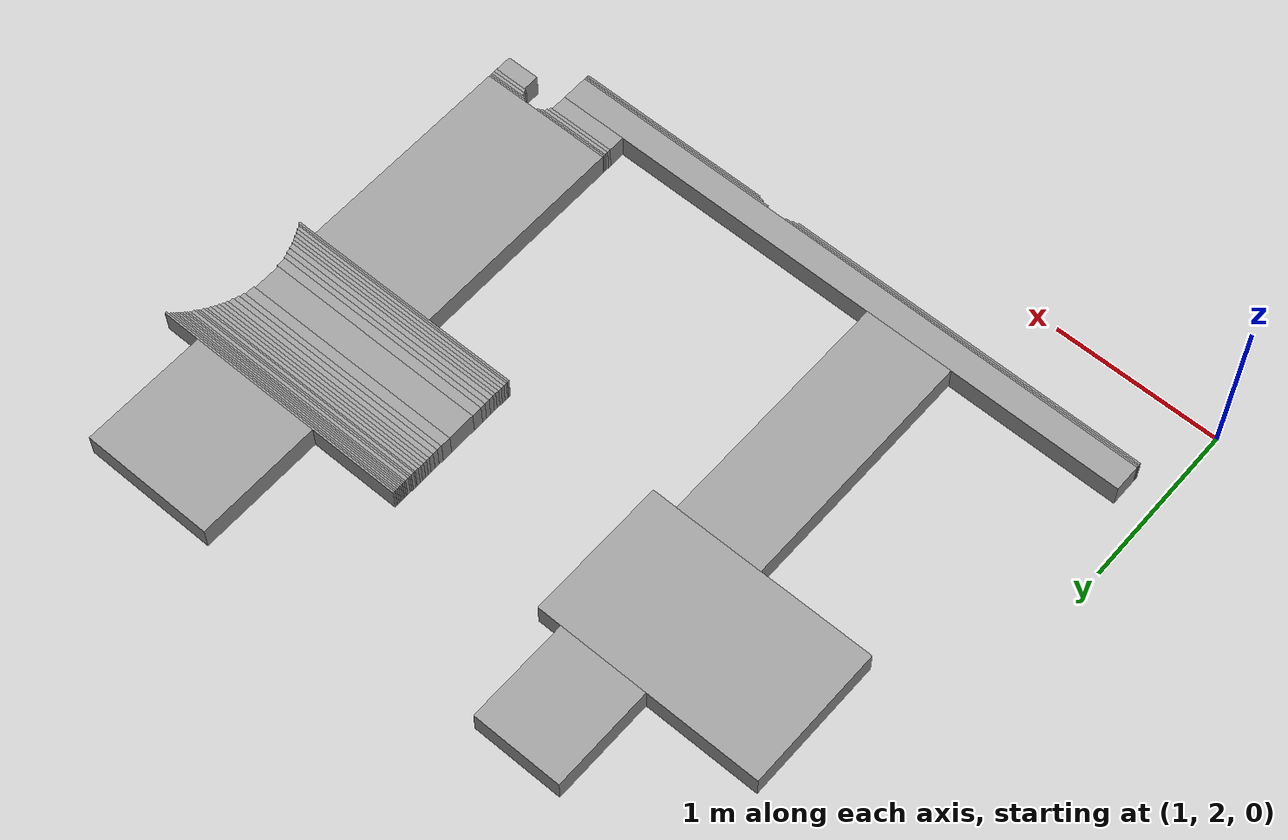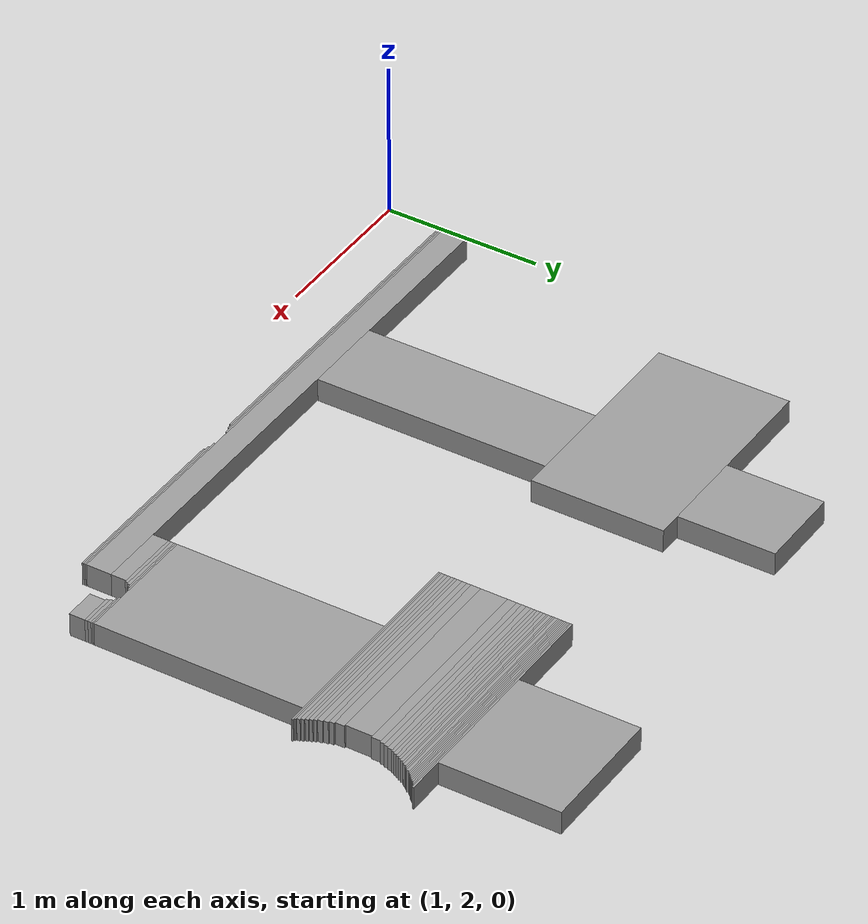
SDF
<sdf version="1.6">
 <model name="new_model">
  <static>1</static>
  <static>1</static>
  <static>1</static>
  <static>1</static>
  <static>1</static>
  <static>1</static>
  <static>1</static>
  <static>1</static>
  <static>1</static>
  <static>1</static>
  <static>1</static>
  <static>1</static>
  <static>1</static>
  <static>1</static>
  <static>1</static>
  <static>1</static>
  <static>1</static>
  <static>1</static>
  <static>1</static>
  <static>1</static>
  <static>1</static>
  <static>1</static>
  <static>1</static>
  <static>1</static>
  <static>1</static>
  <static>1</static>
  <static>1</static>
  <static>1</static>
  <static>1</static>
  <static>1</static>
  <static>1</static>
  <static>1</static>
  <static>1</static>
  <static>1</static>
  <static>1</static>
  <static>1</static>
  <static>1</static>
  <static>1</static>
  <static>1</static>
  <static>1</static>
  <static>1</static>
  <static>1</static>
  <static>1</static>
  <static>1</static>
  <static>1</static>
  <static>1</static>
  <static>1</static>
  <static>1</static>
  <static>1</static>
  <static>1</static>
  <static>1</static>
  <static>1</static>
  <static>1</static>
  <static>1</static>
  <static>1</static>
  <static>1</static>
  <static>1</static>
  <static>1</static>
  <static>1</static>
  <static>1</static>
  <static>1</static>
  <static>1</static>
  <static>1</static>
  <static>1</static>
  <static>1</static>
  <static>1</static>
  <static>1</static>
  <static>1</static>
  <static>1</static>
  <static>1</static>
  <static>1</static>
  <static>1</static>
  <static>1</static>
  <static>1</static>
  <static>1</static>
  <static>1</static>
  <static>1</static>
  <static>1</static>
  <static>1</static>
  <static>1</static>
  <static>1</static>
  <static>1</static>
  <static>1</static>
  <static>1</static>
  <static>1</static>
  <static>1</static>
  <static>1</static>
  <static>1</static>
  <static>1</static>
  <static>1</static>
  <static>1</static>
  <static>1</static>
  <static>1</static>
  <static>1</static>
  <static>1</static>
  <static>1</static>
  <static>1</static>
  <static>1</static>
  <static>1</static>
  <static>1</static>
  <static>1</static>
  <static>1</static>
  <static>1</static>
  <static>1</static>
  <static>1</static>
  <static>1</static>
  <static>1</static>
  <static>1</static>
  <static>1</static>
  <static>1</static>
  <static>1</static>
  <static>1</static>
  <static>1</static>
  <static>1</static>
  <link name="wall115">
   <collision name="wall115_collision">
    <geometry><box><size>2.191250 0.011250 0.150000</size></box></geometry>
    <pose>2.270000 2.450000 0.075000 0 0 0</pose>
   </collision>
   <visual name="Wall_115_Visual">
    <pose>2.270000 2.450000 0.075000 0 0 0</pose>
    <geometry><box><size>2.191250 0.011250 0.150000</size></box></geometry>
    <material>
     <script><uri>file://media/materials/scripts/gazebo.material</uri><name>Gazebo/Grey</name></script>
     <ambient>1 1 1 1</ambient>
    </material>
    <meta><layer>0</layer></meta>
   </visual>
  </link>
  <static>1</static>
  <link name="wall116">
   <collision name="wall116_collision">
    <geometry><box><size>1.201250 0.011250 0.150000</size></box></geometry>
    <pose>4.225000 2.450000 0.075000 0 0 0</pose>
   </collision>
   <visual name="Wall_116_Visual">
    <pose>4.225000 2.450000 0.075000 0 0 0</pose>
    <geometry><box><size>1.201250 0.011250 0.150000</size></box></geometry>
    <material>
     <script><uri>file://media/materials/scripts/gazebo.material</uri><name>Gazebo/Grey</name></script>
     <ambient>1 1 1 1</ambient>
    </material>
    <meta><layer>0</layer></meta>
   </visual>
  </link>
  <static>1</static>
  <link name="wall117">
   <collision name="wall117_collision">
    <geometry><box><size>2.221250 0.011250 0.150000</size></box></geometry>
    <pose>2.285000 2.460000 0.075000 0 0 0</pose>
   </collision>
   <visual name="Wall_117_Visual">
    <pose>2.285000 2.460000 0.075000 0 0 0</pose>
    <geometry><box><size>2.221250 0.011250 0.150000</size></box></geometry>
    <material>
     <script><uri>file://media/materials/scripts/gazebo.material</uri><name>Gazebo/Grey</name></script>
     <ambient>1 1 1 1</ambient>
    </material>
    <meta><layer>0</layer></meta>
   </visual>
  </link>
  <static>1</static>
  <link name="wall118">
   <collision name="wall118_collision">
    <geometry><box><size>1.231250 0.011250 0.150000</size></box></geometry>
    <pose>4.210000 2.460000 0.075000 0 0 0</pose>
   </collision>
   <visual name="Wall_118_Visual">
    <pose>4.210000 2.460000 0.075000 0 0 0</pose>
    <geometry><box><size>1.231250 0.011250 0.150000</size></box></geometry>
    <material>
     <script><uri>file://media/materials/scripts/gazebo.material</uri><name>Gazebo/Grey</name></script>
     <ambient>1 1 1 1</ambient>
    </material>
    <meta><layer>0</layer></meta>
   </visual>
  </link>
  <static>1</static>
  <link name="wall119">
   <collision name="wall119_collision">
    <geometry><box><size>2.261250 0.011250 0.150000</size></box></geometry>
    <pose>2.305000 2.470000 0.075000 0 0 0</pose>
   </collision>
   <visual name="Wall_119_Visual">
    <pose>2.305000 2.470000 0.075000 0 0 0</pose>
    <geometry><box><size>2.261250 0.011250 0.150000</size></box></geometry>
    <material>
     <script><uri>file://media/materials/scripts/gazebo.material</uri><name>Gazebo/Grey</name></script>
     <ambient>1 1 1 1</ambient>
    </material>
    <meta><layer>0</layer></meta>
   </visual>
  </link>
  <static>1</static>
  <link name="wall120">
   <collision name="wall120_collision">
    <geometry><box><size>1.271250 0.011250 0.150000</size></box></geometry>
    <pose>4.190000 2.470000 0.075000 0 0 0</pose>
   </collision>
   <visual name="Wall_120_Visual">
    <pose>4.190000 2.470000 0.075000 0 0 0</pose>
    <geometry><box><size>1.271250 0.011250 0.150000</size></box></geometry>
    <material>
     <script><uri>file://media/materials/scripts/gazebo.material</uri><name>Gazebo/Grey</name></script>
     <ambient>1 1 1 1</ambient>
    </material>
    <meta><layer>0</layer></meta>
   </visual>
  </link>
  <static>1</static>
  <link name="wall121">
   <collision name="wall121_collision">
    <geometry><box><size>3.651250 0.161250 0.150000</size></box></geometry>
    <pose>3.000000 2.555000 0.075000 0 0 0</pose>
   </collision>
   <visual name="Wall_121_Visual">
    <pose>3.000000 2.555000 0.075000 0 0 0</pose>
    <geometry><box><size>3.651250 0.161250 0.150000</size></box></geometry>
    <material>
     <script><uri>file://media/materials/scripts/gazebo.material</uri><name>Gazebo/Grey</name></script>
     <ambient>1 1 1 1</ambient>
    </material>
    <meta><layer>0</layer></meta>
   </visual>
  </link>
  <static>1</static>
  <link name="wall122">
   <collision name="wall122_collision">
    <geometry><box><size>0.541250 1.501250 0.150000</size></box></geometry>
    <pose>2.485000 3.385000 0.075000 0 0 0</pose>
   </collision>
   <visual name="Wall_122_Visual">
    <pose>2.485000 3.385000 0.075000 0 0 0</pose>
    <geometry><box><size>0.541250 1.501250 0.150000</size></box></geometry>
    <material>
     <script><uri>file://media/materials/scripts/gazebo.material</uri><name>Gazebo/Grey</name></script>
     <ambient>1 1 1 1</ambient>
    </material>
    <meta><layer>0</layer></meta>
   </visual>
  </link>
  <static>1</static>
  <link name="wall123">
   <collision name="wall123_collision">
    <geometry><box><size>0.411250 0.101250 0.150000</size></box></geometry>
    <pose>4.620000 2.685000 0.075000 0 0 0</pose>
   </collision>
   <visual name="Wall_123_Visual">
    <pose>4.620000 2.685000 0.075000 0 0 0</pose>
    <geometry><box><size>0.411250 0.101250 0.150000</size></box></geometry>
    <material>
     <script><uri>file://media/materials/scripts/gazebo.material</uri><name>Gazebo/Grey</name></script>
     <ambient>1 1 1 1</ambient>
    </material>
    <meta><layer>0</layer></meta>
   </visual>
  </link>
  <static>1</static>
  <link name="wall124">
   <collision name="wall124_collision">
    <geometry><box><size>0.201250 0.101250 0.150000</size></box></geometry>
    <pose>5.125000 2.685000 0.075000 0 0 0</pose>
   </collision>
   <visual name="Wall_124_Visual">
    <pose>5.125000 2.685000 0.075000 0 0 0</pose>
    <geometry><box><size>0.201250 0.101250 0.150000</size></box></geometry>
    <material>
     <script><uri>file://media/materials/scripts/gazebo.material</uri><name>Gazebo/Grey</name></script>
     <ambient>1 1 1 1</ambient>
    </material>
    <meta><layer>0</layer></meta>
   </visual>
  </link>
  <static>1</static>
  <link name="wall125">
   <collision name="wall125_collision">
    <geometry><box><size>0.421250 0.021250 0.150000</size></box></geometry>
    <pose>4.625000 2.745000 0.075000 0 0 0</pose>
   </collision>
   <visual name="Wall_125_Visual">
    <pose>4.625000 2.745000 0.075000 0 0 0</pose>
    <geometry><box><size>0.421250 0.021250 0.150000</size></box></geometry>
    <material>
     <script><uri>file://media/materials/scripts/gazebo.material</uri><name>Gazebo/Grey</name></script>
     <ambient>1 1 1 1</ambient>
    </material>
    <meta><layer>0</layer></meta>
   </visual>
  </link>
  <static>1</static>
  <link name="wall126">
   <collision name="wall126_collision">
    <geometry><box><size>0.211250 0.021250 0.150000</size></box></geometry>
    <pose>5.120000 2.745000 0.075000 0 0 0</pose>
   </collision>
   <visual name="Wall_126_Visual">
    <pose>5.120000 2.745000 0.075000 0 0 0</pose>
    <geometry><box><size>0.211250 0.021250 0.150000</size></box></geometry>
    <material>
     <script><uri>file://media/materials/scripts/gazebo.material</uri><name>Gazebo/Grey</name></script>
     <ambient>1 1 1 1</ambient>
    </material>
    <meta><layer>0</layer></meta>
   </visual>
  </link>
  <static>1</static>
  <link name="wall127">
   <collision name="wall127_collision">
    <geometry><box><size>0.431250 0.021250 0.150000</size></box></geometry>
    <pose>4.630000 2.765000 0.075000 0 0 0</pose>
   </collision>
   <visual name="Wall_127_Visual">
    <pose>4.630000 2.765000 0.075000 0 0 0</pose>
    <geometry><box><size>0.431250 0.021250 0.150000</size></box></geometry>
    <material>
     <script><uri>file://media/materials/scripts/gazebo.material</uri><name>Gazebo/Grey</name></script>
     <ambient>1 1 1 1</ambient>
    </material>
    <meta><layer>0</layer></meta>
   </visual>
  </link>
  <static>1</static>
  <link name="wall128">
   <collision name="wall128_collision">
    <geometry><box><size>0.221250 0.021250 0.150000</size></box></geometry>
    <pose>5.115000 2.765000 0.075000 0 0 0</pose>
   </collision>
   <visual name="Wall_128_Visual">
    <pose>5.115000 2.765000 0.075000 0 0 0</pose>
    <geometry><box><size>0.221250 0.021250 0.150000</size></box></geometry>
    <material>
     <script><uri>file://media/materials/scripts/gazebo.material</uri><name>Gazebo/Grey</name></script>
     <ambient>1 1 1 1</ambient>
    </material>
    <meta><layer>0</layer></meta>
   </visual>
  </link>
  <static>1</static>
  <link name="wall129">
   <collision name="wall129_collision">
    <geometry><box><size>0.451250 0.011250 0.150000</size></box></geometry>
    <pose>4.640000 2.780000 0.075000 0 0 0</pose>
   </collision>
   <visual name="Wall_129_Visual">
    <pose>4.640000 2.780000 0.075000 0 0 0</pose>
    <geometry><box><size>0.451250 0.011250 0.150000</size></box></geometry>
    <material>
     <script><uri>file://media/materials/scripts/gazebo.material</uri><name>Gazebo/Grey</name></script>
     <ambient>1 1 1 1</ambient>
    </material>
    <meta><layer>0</layer></meta>
   </visual>
  </link>
  <static>1</static>
  <link name="wall130">
   <collision name="wall130_collision">
    <geometry><box><size>0.241250 0.011250 0.150000</size></box></geometry>
    <pose>5.105000 2.780000 0.075000 0 0 0</pose>
   </collision>
   <visual name="Wall_130_Visual">
    <pose>5.105000 2.780000 0.075000 0 0 0</pose>
    <geometry><box><size>0.241250 0.011250 0.150000</size></box></geometry>
    <material>
     <script><uri>file://media/materials/scripts/gazebo.material</uri><name>Gazebo/Grey</name></script>
     <ambient>1 1 1 1</ambient>
    </material>
    <meta><layer>0</layer></meta>
   </visual>
  </link>
  <static>1</static>
  <link name="wall131">
   <collision name="wall131_collision">
    <geometry><box><size>0.471250 0.011250 0.150000</size></box></geometry>
    <pose>4.650000 2.790000 0.075000 0 0 0</pose>
   </collision>
   <visual name="Wall_131_Visual">
    <pose>4.650000 2.790000 0.075000 0 0 0</pose>
    <geometry><box><size>0.471250 0.011250 0.150000</size></box></geometry>
    <material>
     <script><uri>file://media/materials/scripts/gazebo.material</uri><name>Gazebo/Grey</name></script>
     <ambient>1 1 1 1</ambient>
    </material>
    <meta><layer>0</layer></meta>
   </visual>
  </link>
  <static>1</static>
  <link name="wall132">
   <collision name="wall132_collision">
    <geometry><box><size>0.261250 0.011250 0.150000</size></box></geometry>
    <pose>5.095000 2.790000 0.075000 0 0 0</pose>
   </collision>
   <visual name="Wall_132_Visual">
    <pose>5.095000 2.790000 0.075000 0 0 0</pose>
    <geometry><box><size>0.261250 0.011250 0.150000</size></box></geometry>
    <material>
     <script><uri>file://media/materials/scripts/gazebo.material</uri><name>Gazebo/Grey</name></script>
     <ambient>1 1 1 1</ambient>
    </material>
    <meta><layer>0</layer></meta>
   </visual>
  </link>
  <static>1</static>
  <link name="wall133">
   <collision name="wall133_collision">
    <geometry><box><size>0.811250 1.341250 0.150000</size></box></geometry>
    <pose>4.820000 3.465000 0.075000 0 0 0</pose>
   </collision>
   <visual name="Wall_133_Visual">
    <pose>4.820000 3.465000 0.075000 0 0 0</pose>
    <geometry><box><size>0.811250 1.341250 0.150000</size></box></geometry>
    <material>
     <script><uri>file://media/materials/scripts/gazebo.material</uri><name>Gazebo/Grey</name></script>
     <ambient>1 1 1 1</ambient>
    </material>
    <meta><layer>0</layer></meta>
   </visual>
  </link>
  <static>1</static>
  <link name="wall134">
   <collision name="wall134_collision">
    <geometry><box><size>1.381250 0.851250 0.150000</size></box></geometry>
    <pose>2.215000 4.560000 0.075000 0 0 0</pose>
   </collision>
   <visual name="Wall_134_Visual">
    <pose>2.215000 4.560000 0.075000 0 0 0</pose>
    <geometry><box><size>1.381250 0.851250 0.150000</size></box></geometry>
    <material>
     <script><uri>file://media/materials/scripts/gazebo.material</uri><name>Gazebo/Grey</name></script>
     <ambient>1 1 1 1</ambient>
    </material>
    <meta><layer>0</layer></meta>
   </visual>
  </link>
  <static>1</static>
  <link name="wall135">
   <collision name="wall135_collision">
    <geometry><box><size>1.471250 0.011250 0.150000</size></box></geometry>
    <pose>4.600000 4.140000 0.075000 0 0 0</pose>
   </collision>
   <visual name="Wall_135_Visual">
    <pose>4.600000 4.140000 0.075000 0 0 0</pose>
    <geometry><box><size>1.471250 0.011250 0.150000</size></box></geometry>
    <material>
     <script><uri>file://media/materials/scripts/gazebo.material</uri><name>Gazebo/Grey</name></script>
     <ambient>1 1 1 1</ambient>
    </material>
    <meta><layer>0</layer></meta>
   </visual>
  </link>
  <static>1</static>
  <link name="wall136">
   <collision name="wall136_collision">
    <geometry><box><size>1.461250 0.011250 0.150000</size></box></geometry>
    <pose>4.595000 4.150000 0.075000 0 0 0</pose>
   </collision>
   <visual name="Wall_136_Visual">
    <pose>4.595000 4.150000 0.075000 0 0 0</pose>
    <geometry><box><size>1.461250 0.011250 0.150000</size></box></geometry>
    <material>
     <script><uri>file://media/materials/scripts/gazebo.material</uri><name>Gazebo/Grey</name></script>
     <ambient>1 1 1 1</ambient>
    </material>
    <meta><layer>0</layer></meta>
   </visual>
  </link>
  <static>1</static>
  <link name="wall137">
   <collision name="wall137_collision">
    <geometry><box><size>1.451250 0.021250 0.150000</size></box></geometry>
    <pose>4.590000 4.165000 0.075000 0 0 0</pose>
   </collision>
   <visual name="Wall_137_Visual">
    <pose>4.590000 4.165000 0.075000 0 0 0</pose>
    <geometry><box><size>1.451250 0.021250 0.150000</size></box></geometry>
    <material>
     <script><uri>file://media/materials/scripts/gazebo.material</uri><name>Gazebo/Grey</name></script>
     <ambient>1 1 1 1</ambient>
    </material>
    <meta><layer>0</layer></meta>
   </visual>
  </link>
  <static>1</static>
  <link name="wall138">
   <collision name="wall138_collision">
    <geometry><box><size>1.441250 0.021250 0.150000</size></box></geometry>
    <pose>4.585000 4.185000 0.075000 0 0 0</pose>
   </collision>
   <visual name="Wall_138_Visual">
    <pose>4.585000 4.185000 0.075000 0 0 0</pose>
    <geometry><box><size>1.441250 0.021250 0.150000</size></box></geometry>
    <material>
     <script><uri>file://media/materials/scripts/gazebo.material</uri><name>Gazebo/Grey</name></script>
     <ambient>1 1 1 1</ambient>
    </material>
    <meta><layer>0</layer></meta>
   </visual>
  </link>
  <static>1</static>
  <link name="wall139">
   <collision name="wall139_collision">
    <geometry><box><size>1.431250 0.021250 0.150000</size></box></geometry>
    <pose>4.580000 4.205000 0.075000 0 0 0</pose>
   </collision>
   <visual name="Wall_139_Visual">
    <pose>4.580000 4.205000 0.075000 0 0 0</pose>
    <geometry><box><size>1.431250 0.021250 0.150000</size></box></geometry>
    <material>
     <script><uri>file://media/materials/scripts/gazebo.material</uri><name>Gazebo/Grey</name></script>
     <ambient>1 1 1 1</ambient>
    </material>
    <meta><layer>0</layer></meta>
   </visual>
  </link>
  <static>1</static>
  <link name="wall140">
   <collision name="wall140_collision">
    <geometry><box><size>1.421250 0.021250 0.150000</size></box></geometry>
    <pose>4.575000 4.225000 0.075000 0 0 0</pose>
   </collision>
   <visual name="Wall_140_Visual">
    <pose>4.575000 4.225000 0.075000 0 0 0</pose>
    <geometry><box><size>1.421250 0.021250 0.150000</size></box></geometry>
    <material>
     <script><uri>file://media/materials/scripts/gazebo.material</uri><name>Gazebo/Grey</name></script>
     <ambient>1 1 1 1</ambient>
    </material>
    <meta><layer>0</layer></meta>
   </visual>
  </link>
  <static>1</static>
  <link name="wall141">
   <collision name="wall141_collision">
    <geometry><box><size>1.411250 0.021250 0.150000</size></box></geometry>
    <pose>4.570000 4.245000 0.075000 0 0 0</pose>
   </collision>
   <visual name="Wall_141_Visual">
    <pose>4.570000 4.245000 0.075000 0 0 0</pose>
    <geometry><box><size>1.411250 0.021250 0.150000</size></box></geometry>
    <material>
     <script><uri>file://media/materials/scripts/gazebo.material</uri><name>Gazebo/Grey</name></script>
     <ambient>1 1 1 1</ambient>
    </material>
    <meta><layer>0</layer></meta>
   </visual>
  </link>
  <static>1</static>
  <link name="wall142">
   <collision name="wall142_collision">
    <geometry><box><size>1.401250 0.031250 0.150000</size></box></geometry>
    <pose>4.565000 4.270000 0.075000 0 0 0</pose>
   </collision>
   <visual name="Wall_142_Visual">
    <pose>4.565000 4.270000 0.075000 0 0 0</pose>
    <geometry><box><size>1.401250 0.031250 0.150000</size></box></geometry>
    <material>
     <script><uri>file://media/materials/scripts/gazebo.material</uri><name>Gazebo/Grey</name></script>
     <ambient>1 1 1 1</ambient>
    </material>
    <meta><layer>0</layer></meta>
   </visual>
  </link>
  <static>1</static>
  <link name="wall143">
   <collision name="wall143_collision">
    <geometry><box><size>1.391250 0.031250 0.150000</size></box></geometry>
    <pose>4.560000 4.300000 0.075000 0 0 0</pose>
   </collision>
   <visual name="Wall_143_Visual">
    <pose>4.560000 4.300000 0.075000 0 0 0</pose>
    <geometry><box><size>1.391250 0.031250 0.150000</size></box></geometry>
    <material>
     <script><uri>file://media/materials/scripts/gazebo.material</uri><name>Gazebo/Grey</name></script>
     <ambient>1 1 1 1</ambient>
    </material>
    <meta><layer>0</layer></meta>
   </visual>
  </link>
  <static>1</static>
  <link name="wall144">
   <collision name="wall144_collision">
    <geometry><box><size>1.381250 0.031250 0.150000</size></box></geometry>
    <pose>4.555000 4.330000 0.075000 0 0 0</pose>
   </collision>
   <visual name="Wall_144_Visual">
    <pose>4.555000 4.330000 0.075000 0 0 0</pose>
    <geometry><box><size>1.381250 0.031250 0.150000</size></box></geometry>
    <material>
     <script><uri>file://media/materials/scripts/gazebo.material</uri><name>Gazebo/Grey</name></script>
     <ambient>1 1 1 1</ambient>
    </material>
    <meta><layer>0</layer></meta>
   </visual>
  </link>
  <static>1</static>
  <link name="wall145">
   <collision name="wall145_collision">
    <geometry><box><size>1.371250 0.061250 0.150000</size></box></geometry>
    <pose>4.550000 4.375000 0.075000 0 0 0</pose>
   </collision>
   <visual name="Wall_145_Visual">
    <pose>4.550000 4.375000 0.075000 0 0 0</pose>
    <geometry><box><size>1.371250 0.061250 0.150000</size></box></geometry>
    <material>
     <script><uri>file://media/materials/scripts/gazebo.material</uri><name>Gazebo/Grey</name></script>
     <ambient>1 1 1 1</ambient>
    </material>
    <meta><layer>0</layer></meta>
   </visual>
  </link>
  <static>1</static>
  <link name="wall146">
   <collision name="wall146_collision">
    <geometry><box><size>1.361250 0.171250 0.150000</size></box></geometry>
    <pose>4.545000 4.490000 0.075000 0 0 0</pose>
   </collision>
   <visual name="Wall_146_Visual">
    <pose>4.545000 4.490000 0.075000 0 0 0</pose>
    <geometry><box><size>1.361250 0.171250 0.150000</size></box></geometry>
    <material>
     <script><uri>file://media/materials/scripts/gazebo.material</uri><name>Gazebo/Grey</name></script>
     <ambient>1 1 1 1</ambient>
    </material>
    <meta><layer>0</layer></meta>
   </visual>
  </link>
  <static>1</static>
  <link name="wall147">
   <collision name="wall147_collision">
    <geometry><box><size>1.371250 0.061250 0.150000</size></box></geometry>
    <pose>4.550000 4.605000 0.075000 0 0 0</pose>
   </collision>
   <visual name="Wall_147_Visual">
    <pose>4.550000 4.605000 0.075000 0 0 0</pose>
    <geometry><box><size>1.371250 0.061250 0.150000</size></box></geometry>
    <material>
     <script><uri>file://media/materials/scripts/gazebo.material</uri><name>Gazebo/Grey</name></script>
     <ambient>1 1 1 1</ambient>
    </material>
    <meta><layer>0</layer></meta>
   </visual>
  </link>
  <static>1</static>
  <link name="wall148">
   <collision name="wall148_collision">
    <geometry><box><size>1.381250 0.031250 0.150000</size></box></geometry>
    <pose>4.555000 4.650000 0.075000 0 0 0</pose>
   </collision>
   <visual name="Wall_148_Visual">
    <pose>4.555000 4.650000 0.075000 0 0 0</pose>
    <geometry><box><size>1.381250 0.031250 0.150000</size></box></geometry>
    <material>
     <script><uri>file://media/materials/scripts/gazebo.material</uri><name>Gazebo/Grey</name></script>
     <ambient>1 1 1 1</ambient>
    </material>
    <meta><layer>0</layer></meta>
   </visual>
  </link>
  <static>1</static>
  <link name="wall149">
   <collision name="wall149_collision">
    <geometry><box><size>1.391250 0.031250 0.150000</size></box></geometry>
    <pose>4.560000 4.680000 0.075000 0 0 0</pose>
   </collision>
   <visual name="Wall_149_Visual">
    <pose>4.560000 4.680000 0.075000 0 0 0</pose>
    <geometry><box><size>1.391250 0.031250 0.150000</size></box></geometry>
    <material>
     <script><uri>file://media/materials/scripts/gazebo.material</uri><name>Gazebo/Grey</name></script>
     <ambient>1 1 1 1</ambient>
    </material>
    <meta><layer>0</layer></meta>
   </visual>
  </link>
  <static>1</static>
  <link name="wall150">
   <collision name="wall150_collision">
    <geometry><box><size>1.401250 0.031250 0.150000</size></box></geometry>
    <pose>4.565000 4.710000 0.075000 0 0 0</pose>
   </collision>
   <visual name="Wall_150_Visual">
    <pose>4.565000 4.710000 0.075000 0 0 0</pose>
    <geometry><box><size>1.401250 0.031250 0.150000</size></box></geometry>
    <material>
     <script><uri>file://media/materials/scripts/gazebo.material</uri><name>Gazebo/Grey</name></script>
     <ambient>1 1 1 1</ambient>
    </material>
    <meta><layer>0</layer></meta>
   </visual>
  </link>
  <static>1</static>
  <link name="wall151">
   <collision name="wall151_collision">
    <geometry><box><size>1.411250 0.021250 0.150000</size></box></geometry>
    <pose>4.570000 4.735000 0.075000 0 0 0</pose>
   </collision>
   <visual name="Wall_151_Visual">
    <pose>4.570000 4.735000 0.075000 0 0 0</pose>
    <geometry><box><size>1.411250 0.021250 0.150000</size></box></geometry>
    <material>
     <script><uri>file://media/materials/scripts/gazebo.material</uri><name>Gazebo/Grey</name></script>
     <ambient>1 1 1 1</ambient>
    </material>
    <meta><layer>0</layer></meta>
   </visual>
  </link>
  <static>1</static>
  <link name="wall152">
   <collision name="wall152_collision">
    <geometry><box><size>1.421250 0.021250 0.150000</size></box></geometry>
    <pose>4.575000 4.755000 0.075000 0 0 0</pose>
   </collision>
   <visual name="Wall_152_Visual">
    <pose>4.575000 4.755000 0.075000 0 0 0</pose>
    <geometry><box><size>1.421250 0.021250 0.150000</size></box></geometry>
    <material>
     <script><uri>file://media/materials/scripts/gazebo.material</uri><name>Gazebo/Grey</name></script>
     <ambient>1 1 1 1</ambient>
    </material>
    <meta><layer>0</layer></meta>
   </visual>
  </link>
  <static>1</static>
  <link name="wall153">
   <collision name="wall153_collision">
    <geometry><box><size>1.431250 0.021250 0.150000</size></box></geometry>
    <pose>4.580000 4.775000 0.075000 0 0 0</pose>
   </collision>
   <visual name="Wall_153_Visual">
    <pose>4.580000 4.775000 0.075000 0 0 0</pose>
    <geometry><box><size>1.431250 0.021250 0.150000</size></box></geometry>
    <material>
     <script><uri>file://media/materials/scripts/gazebo.material</uri><name>Gazebo/Grey</name></script>
     <ambient>1 1 1 1</ambient>
    </material>
    <meta><layer>0</layer></meta>
   </visual>
  </link>
  <static>1</static>
  <link name="wall154">
   <collision name="wall154_collision">
    <geometry><box><size>1.441250 0.021250 0.150000</size></box></geometry>
    <pose>4.585000 4.795000 0.075000 0 0 0</pose>
   </collision>
   <visual name="Wall_154_Visual">
    <pose>4.585000 4.795000 0.075000 0 0 0</pose>
    <geometry><box><size>1.441250 0.021250 0.150000</size></box></geometry>
    <material>
     <script><uri>file://media/materials/scripts/gazebo.material</uri><name>Gazebo/Grey</name></script>
     <ambient>1 1 1 1</ambient>
    </material>
    <meta><layer>0</layer></meta>
   </visual>
  </link>
  <static>1</static>
  <link name="wall155">
   <collision name="wall155_collision">
    <geometry><box><size>1.451250 0.021250 0.150000</size></box></geometry>
    <pose>4.590000 4.815000 0.075000 0 0 0</pose>
   </collision>
   <visual name="Wall_155_Visual">
    <pose>4.590000 4.815000 0.075000 0 0 0</pose>
    <geometry><box><size>1.451250 0.021250 0.150000</size></box></geometry>
    <material>
     <script><uri>file://media/materials/scripts/gazebo.material</uri><name>Gazebo/Grey</name></script>
     <ambient>1 1 1 1</ambient>
    </material>
    <meta><layer>0</layer></meta>
   </visual>
  </link>
  <static>1</static>
  <link name="wall156">
   <collision name="wall156_collision">
    <geometry><box><size>1.461250 0.011250 0.150000</size></box></geometry>
    <pose>4.595000 4.830000 0.075000 0 0 0</pose>
   </collision>
   <visual name="Wall_156_Visual">
    <pose>4.595000 4.830000 0.075000 0 0 0</pose>
    <geometry><box><size>1.461250 0.011250 0.150000</size></box></geometry>
    <material>
     <script><uri>file://media/materials/scripts/gazebo.material</uri><name>Gazebo/Grey</name></script>
     <ambient>1 1 1 1</ambient>
    </material>
    <meta><layer>0</layer></meta>
   </visual>
  </link>
  <static>1</static>
  <link name="wall157">
   <collision name="wall157_collision">
    <geometry><box><size>1.471250 0.021250 0.150000</size></box></geometry>
    <pose>4.600000 4.845000 0.075000 0 0 0</pose>
   </collision>
   <visual name="Wall_157_Visual">
    <pose>4.600000 4.845000 0.075000 0 0 0</pose>
    <geometry><box><size>1.471250 0.021250 0.150000</size></box></geometry>
    <material>
     <script><uri>file://media/materials/scripts/gazebo.material</uri><name>Gazebo/Grey</name></script>
     <ambient>1 1 1 1</ambient>
    </material>
    <meta><layer>0</layer></meta>
   </visual>
  </link>
  <static>1</static>
  <link name="wall158">
   <collision name="wall158_collision">
    <geometry><box><size>1.481250 0.011250 0.150000</size></box></geometry>
    <pose>4.605000 4.860000 0.075000 0 0 0</pose>
   </collision>
   <visual name="Wall_158_Visual">
    <pose>4.605000 4.860000 0.075000 0 0 0</pose>
    <geometry><box><size>1.481250 0.011250 0.150000</size></box></geometry>
    <material>
     <script><uri>file://media/materials/scripts/gazebo.material</uri><name>Gazebo/Grey</name></script>
     <ambient>1 1 1 1</ambient>
    </material>
    <meta><layer>0</layer></meta>
   </visual>
  </link>
  <static>1</static>
  <link name="wall159">
   <collision name="wall159_collision">
    <geometry><box><size>1.491250 0.011250 0.150000</size></box></geometry>
    <pose>4.610000 4.870000 0.075000 0 0 0</pose>
   </collision>
   <visual name="Wall_159_Visual">
    <pose>4.610000 4.870000 0.075000 0 0 0</pose>
    <geometry><box><size>1.491250 0.011250 0.150000</size></box></geometry>
    <material>
     <script><uri>file://media/materials/scripts/gazebo.material</uri><name>Gazebo/Grey</name></script>
     <ambient>1 1 1 1</ambient>
    </material>
    <meta><layer>0</layer></meta>
   </visual>
  </link>
  <static>1</static>
  <link name="wall160">
   <collision name="wall160_collision">
    <geometry><box><size>1.501250 0.021250 0.150000</size></box></geometry>
    <pose>4.615000 4.885000 0.075000 0 0 0</pose>
   </collision>
   <visual name="Wall_160_Visual">
    <pose>4.615000 4.885000 0.075000 0 0 0</pose>
    <geometry><box><size>1.501250 0.021250 0.150000</size></box></geometry>
    <material>
     <script><uri>file://media/materials/scripts/gazebo.material</uri><name>Gazebo/Grey</name></script>
     <ambient>1 1 1 1</ambient>
    </material>
    <meta><layer>0</layer></meta>
   </visual>
  </link>
  <static>1</static>
  <link name="wall161">
   <collision name="wall161_collision">
    <geometry><box><size>1.511250 0.011250 0.150000</size></box></geometry>
    <pose>4.620000 4.900000 0.075000 0 0 0</pose>
   </collision>
   <visual name="Wall_161_Visual">
    <pose>4.620000 4.900000 0.075000 0 0 0</pose>
    <geometry><box><size>1.511250 0.011250 0.150000</size></box></geometry>
    <material>
     <script><uri>file://media/materials/scripts/gazebo.material</uri><name>Gazebo/Grey</name></script>
     <ambient>1 1 1 1</ambient>
    </material>
    <meta><layer>0</layer></meta>
   </visual>
  </link>
  <static>1</static>
  <link name="wall162">
   <collision name="wall162_collision">
    <geometry><box><size>1.521250 0.011250 0.150000</size></box></geometry>
    <pose>4.625000 4.910000 0.075000 0 0 0</pose>
   </collision>
   <visual name="Wall_162_Visual">
    <pose>4.625000 4.910000 0.075000 0 0 0</pose>
    <geometry><box><size>1.521250 0.011250 0.150000</size></box></geometry>
    <material>
     <script><uri>file://media/materials/scripts/gazebo.material</uri><name>Gazebo/Grey</name></script>
     <ambient>1 1 1 1</ambient>
    </material>
    <meta><layer>0</layer></meta>
   </visual>
  </link>
  <static>1</static>
  <link name="wall163">
   <collision name="wall163_collision">
    <geometry><box><size>1.531250 0.011250 0.150000</size></box></geometry>
    <pose>4.630000 4.920000 0.075000 0 0 0</pose>
   </collision>
   <visual name="Wall_163_Visual">
    <pose>4.630000 4.920000 0.075000 0 0 0</pose>
    <geometry><box><size>1.531250 0.011250 0.150000</size></box></geometry>
    <material>
     <script><uri>file://media/materials/scripts/gazebo.material</uri><name>Gazebo/Grey</name></script>
     <ambient>1 1 1 1</ambient>
    </material>
    <meta><layer>0</layer></meta>
   </visual>
  </link>
  <static>1</static>
  <link name="wall164">
   <collision name="wall164_collision">
    <geometry><box><size>1.541250 0.011250 0.150000</size></box></geometry>
    <pose>4.635000 4.930000 0.075000 0 0 0</pose>
   </collision>
   <visual name="Wall_164_Visual">
    <pose>4.635000 4.930000 0.075000 0 0 0</pose>
    <geometry><box><size>1.541250 0.011250 0.150000</size></box></geometry>
    <material>
     <script><uri>file://media/materials/scripts/gazebo.material</uri><name>Gazebo/Grey</name></script>
     <ambient>1 1 1 1</ambient>
    </material>
    <meta><layer>0</layer></meta>
   </visual>
  </link>
  <static>1</static>
  <link name="wall165">
   <collision name="wall165_collision">
    <geometry><box><size>1.551250 0.011250 0.150000</size></box></geometry>
    <pose>4.640000 4.940000 0.075000 0 0 0</pose>
   </collision>
   <visual name="Wall_165_Visual">
    <pose>4.640000 4.940000 0.075000 0 0 0</pose>
    <geometry><box><size>1.551250 0.011250 0.150000</size></box></geometry>
    <material>
     <script><uri>file://media/materials/scripts/gazebo.material</uri><name>Gazebo/Grey</name></script>
     <ambient>1 1 1 1</ambient>
    </material>
    <meta><layer>0</layer></meta>
   </visual>
  </link>
  <static>1</static>
  <link name="wall166">
   <collision name="wall166_collision">
    <geometry><box><size>1.561250 0.011250 0.150000</size></box></geometry>
    <pose>4.645000 4.950000 0.075000 0 0 0</pose>
   </collision>
   <visual name="Wall_166_Visual">
    <pose>4.645000 4.950000 0.075000 0 0 0</pose>
    <geometry><box><size>1.561250 0.011250 0.150000</size></box></geometry>
    <material>
     <script><uri>file://media/materials/scripts/gazebo.material</uri><name>Gazebo/Grey</name></script>
     <ambient>1 1 1 1</ambient>
    </material>
    <meta><layer>0</layer></meta>
   </visual>
  </link>
  <static>1</static>
  <link name="wall167">
   <collision name="wall167_collision">
    <geometry><box><size>1.571250 0.011250 0.150000</size></box></geometry>
    <pose>4.650000 4.960000 0.075000 0 0 0</pose>
   </collision>
   <visual name="Wall_167_Visual">
    <pose>4.650000 4.960000 0.075000 0 0 0</pose>
    <geometry><box><size>1.571250 0.011250 0.150000</size></box></geometry>
    <material>
     <script><uri>file://media/materials/scripts/gazebo.material</uri><name>Gazebo/Grey</name></script>
     <ambient>1 1 1 1</ambient>
    </material>
    <meta><layer>0</layer></meta>
   </visual>
  </link>
  <static>1</static>
  <link name="wall168">
   <collision name="wall168_collision">
    <geometry><box><size>1.581250 0.011250 0.150000</size></box></geometry>
    <pose>4.655000 4.970000 0.075000 0 0 0</pose>
   </collision>
   <visual name="Wall_168_Visual">
    <pose>4.655000 4.970000 0.075000 0 0 0</pose>
    <geometry><box><size>1.581250 0.011250 0.150000</size></box></geometry>
    <material>
     <script><uri>file://media/materials/scripts/gazebo.material</uri><name>Gazebo/Grey</name></script>
     <ambient>1 1 1 1</ambient>
    </material>
    <meta><layer>0</layer></meta>
   </visual>
  </link>
  <static>1</static>
  <link name="wall169">
   <collision name="wall169_collision">
    <geometry><box><size>1.601250 0.011250 0.150000</size></box></geometry>
    <pose>4.665000 4.980000 0.075000 0 0 0</pose>
   </collision>
   <visual name="Wall_169_Visual">
    <pose>4.665000 4.980000 0.075000 0 0 0</pose>
    <geometry><box><size>1.601250 0.011250 0.150000</size></box></geometry>
    <material>
     <script><uri>file://media/materials/scripts/gazebo.material</uri><name>Gazebo/Grey</name></script>
     <ambient>1 1 1 1</ambient>
    </material>
    <meta><layer>0</layer></meta>
   </visual>
  </link>
  <static>1</static>
  <link name="wall170">
   <collision name="wall170_collision">
    <geometry><box><size>0.541250 0.621250 0.150000</size></box></geometry>
    <pose>2.485000 5.295000 0.075000 0 0 0</pose>
   </collision>
   <visual name="Wall_170_Visual">
    <pose>2.485000 5.295000 0.075000 0 0 0</pose>
    <geometry><box><size>0.541250 0.621250 0.150000</size></box></geometry>
    <material>
     <script><uri>file://media/materials/scripts/gazebo.material</uri><name>Gazebo/Grey</name></script>
     <ambient>1 1 1 1</ambient>
    </material>
    <meta><layer>0</layer></meta>
   </visual>
  </link>
  <static>1</static>
  <link name="wall171">
   <collision name="wall171_collision">
    <geometry><box><size>0.811250 0.761250 0.150000</size></box></geometry>
    <pose>4.820000 5.365000 0.075000 0 0 0</pose>
   </collision>
   <visual name="Wall_171_Visual">
    <pose>4.820000 5.365000 0.075000 0 0 0</pose>
    <geometry><box><size>0.811250 0.761250 0.150000</size></box></geometry>
    <material>
     <script><uri>file://media/materials/scripts/gazebo.material</uri><name>Gazebo/Grey</name></script>
     <ambient>1 1 1 1</ambient>
    </material>
    <meta><layer>0</layer></meta>
   </visual>
  </link>
  <static>1</static>
 </model>
</sdf>
